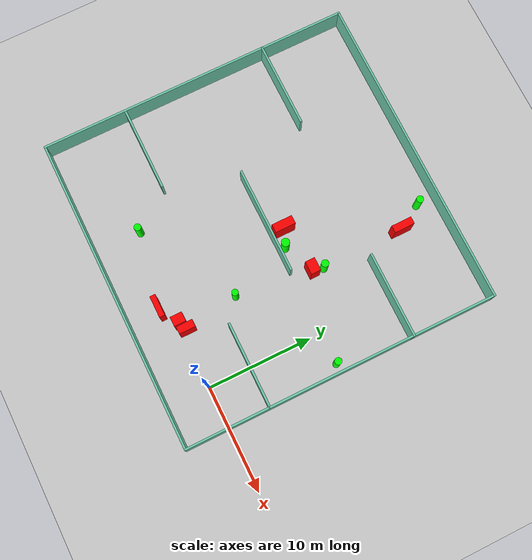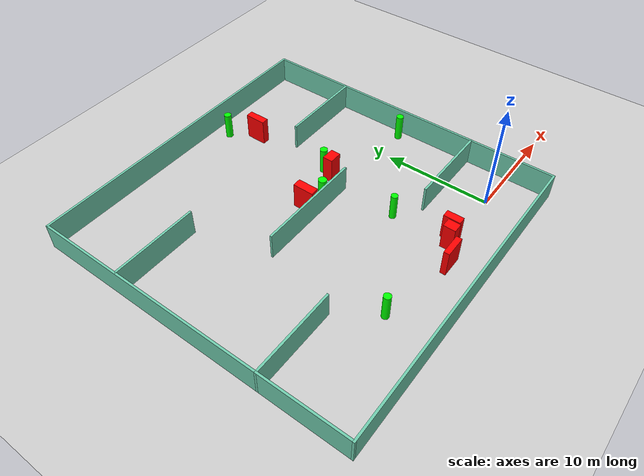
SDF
<sdf version="1.7">
 <world name="default">
  <light name="sun" type="directional">
   <pose>0 0 10 0 -0 0</pose>
   <diffuse>0.8 0.8 0.8 1</diffuse>
   <specular>0.2 0.2 0.2 1</specular>
   <attenuation>
    <range>1000</range>
    <constant>0.9</constant>
    <linear>0.01</linear>
    <quadratic>0.001</quadratic>
   </attenuation>
   <direction>-0.5 0.1 -0.9</direction>
   <spot><inner_angle>0</inner_angle><outer_angle>0</outer_angle><falloff>0</falloff></spot>
  </light>
  <model name="ground_plane">
   <static>1</static>
   <link name="link">
    <collision name="collision">
     <geometry><plane><normal>0 0 1</normal><size>100 100</size></plane></geometry>
     <surface>
      <contact><collide_bitmask>65535</collide_bitmask></contact>
      <friction><ode><mu>100</mu><mu2>50</mu2></ode></friction>
     </surface>
    </collision>
    <visual name="visual">
     <cast_shadows>0</cast_shadows>
     <geometry><plane><normal>0 0 1</normal><size>100 100</size></plane></geometry>
     <material>
      <script><uri>file://media/materials/scripts/gazebo.material</uri><name>Gazebo/Grey</name></script>
     </material>
    </visual>
   </link>
  </model>
  <gravity>0 0 -9.8</gravity>
  <magnetic_field>6e-06 2.3e-05 -4.2e-05</magnetic_field>
  <atmosphere type="adiabatic"/>
  <physics type="ode">
   <max_step_size>0.001</max_step_size>
   <real_time_factor>1</real_time_factor>
   <real_time_update_rate>1000</real_time_update_rate>
  </physics>
  <scene><ambient>0.4 0.4 0.4 1</ambient><background>0.7 0.7 0.7 1</background><shadows>1</shadows></scene>
  <spherical_coordinates>
   <surface_model>EARTH_WGS84</surface_model>
   <latitude_deg>0</latitude_deg>
   <longitude_deg>0</longitude_deg>
   <elevation>0</elevation>
   <heading_deg>0</heading_deg>
  </spherical_coordinates>
  <model name="my_base_walls">
   <link name="Wall_10">
    <collision name="Wall_10_Collision">
     <geometry><box><size>8.2 0.2 2.5</size></box></geometry>
     <pose>0 0 1.25 0 -0 0</pose>
    </collision>
    <visual name="Wall_10_Visual">
     <pose>0 0 1.25 0 -0 0</pose>
     <geometry><box><size>8.2 0.2 2.5</size></box></geometry>
     <material>
      <script><uri>file://media/materials/scripts/gazebo.material</uri><name>Gazebo/Grey</name></script>
      <ambient>0.435294 0.796078 0.67451 1</ambient>
     </material>
     <meta><layer>0</layer></meta>
    </visual>
    <pose>-11 -7 0 0 -0 0</pose>
   </link>
   <link name="Wall_12">
    <collision name="Wall_12_Collision">
     <geometry><box><size>8.2 0.2 2.5</size></box></geometry>
     <pose>0 0 1.25 0 -0 0</pose>
    </collision>
    <visual name="Wall_12_Visual">
     <pose>0 0 1.25 0 -0 0</pose>
     <geometry><box><size>8.2 0.2 2.5</size></box></geometry>
     <material>
      <script><uri>file://media/materials/scripts/gazebo.material</uri><name>Gazebo/Grey</name></script>
      <ambient>0.435294 0.796078 0.67451 1</ambient>
     </material>
     <meta><layer>0</layer></meta>
    </visual>
    <pose>-11 7 0 0 -0 0</pose>
   </link>
   <link name="Wall_14">
    <collision name="Wall_14_Collision">
     <geometry><box><size>8.2 0.2 2.5</size></box></geometry>
     <pose>0 0 1.25 0 -0 0</pose>
    </collision>
    <visual name="Wall_14_Visual">
     <pose>0 0 1.25 0 -0 0</pose>
     <geometry><box><size>8.2 0.2 2.5</size></box></geometry>
     <material>
      <script><uri>file://media/materials/scripts/gazebo.material</uri><name>Gazebo/Grey</name></script>
      <ambient>0.435294 0.796078 0.67451 1</ambient>
     </material>
     <meta><layer>0</layer></meta>
    </visual>
    <pose>11 7 0 0 -0 3.14159</pose>
   </link>
   <link name="Wall_16">
    <collision name="Wall_16_Collision">
     <geometry><box><size>10.2 0.2 2.5</size></box></geometry>
     <pose>0 0 1.25 0 -0 0</pose>
    </collision>
    <visual name="Wall_16_Visual">
     <pose>0 0 1.25 0 -0 0</pose>
     <geometry><box><size>10.2 0.2 2.5</size></box></geometry>
     <material>
      <script><uri>file://media/materials/scripts/gazebo.material</uri><name>Gazebo/Grey</name></script>
      <ambient>0.435294 0.796078 0.67451 1</ambient>
     </material>
     <meta><layer>0</layer></meta>
    </visual>
    <pose>0 0 0 0 -0 3.14159</pose>
   </link>
   <link name="Wall_2">
    <collision name="Wall_2_Collision">
     <geometry><box><size>30.2 0.2 2.5</size></box></geometry>
     <pose>0 0 1.25 0 -0 0</pose>
    </collision>
    <visual name="Wall_2_Visual">
     <pose>0 0 1.25 0 -0 0</pose>
     <geometry><box><size>30.2 0.2 2.5</size></box></geometry>
     <material>
      <script><uri>file://media/materials/scripts/gazebo.material</uri><name>Gazebo/Grey</name></script>
      <ambient>0.435294 0.796078 0.67451 1</ambient>
     </material>
     <meta><layer>0</layer></meta>
    </visual>
    <pose>0 -15 0 0 -0 3.14159</pose>
   </link>
   <link name="Wall_3">
    <collision name="Wall_3_Collision">
     <geometry><box><size>30.2 0.2 2.5</size></box></geometry>
     <pose>0 0 1.25 0 -0 0</pose>
    </collision>
    <visual name="Wall_3_Visual">
     <pose>0 0 1.25 0 -0 0</pose>
     <geometry><box><size>30.2 0.2 2.5</size></box></geometry>
     <material>
      <script><uri>file://media/materials/scripts/gazebo.material</uri><name>Gazebo/Grey</name></script>
      <ambient>0.435294 0.796078 0.67451 1</ambient>
     </material>
     <meta><layer>0</layer></meta>
    </visual>
    <pose>-15 0 0 0 -0 1.5708</pose>
   </link>
   <link name="Wall_4">
    <collision name="Wall_4_Collision">
     <geometry><box><size>30.2 0.2 2.5</size></box></geometry>
     <pose>0 0 1.25 0 -0 0</pose>
    </collision>
    <visual name="Wall_4_Visual">
     <pose>0 0 1.25 0 -0 0</pose>
     <geometry><box><size>30.2 0.2 2.5</size></box></geometry>
     <material>
      <script><uri>file://media/materials/scripts/gazebo.material</uri><name>Gazebo/Grey</name></script>
      <ambient>0.435294 0.796078 0.67451 1</ambient>
     </material>
     <meta><layer>0</layer></meta>
    </visual>
    <pose>0 15 0 0 -0 0</pose>
   </link>
   <link name="Wall_6">
    <collision name="Wall_6_Collision">
     <geometry><box><size>30.2 0.2 2.5</size></box></geometry>
     <pose>0 0 1.25 0 -0 0</pose>
    </collision>
    <visual name="Wall_6_Visual">
     <pose>0 0 1.25 0 -0 0</pose>
     <geometry><box><size>30.2 0.2 2.5</size></box></geometry>
     <material>
      <script><uri>file://media/materials/scripts/gazebo.material</uri><name>Gazebo/Grey</name></script>
      <ambient>0.435294 0.796078 0.67451 1</ambient>
     </material>
     <meta><layer>0</layer></meta>
    </visual>
    <pose>15 0 0 0 -0 1.5708</pose>
   </link>
   <link name="Wall_8">
    <collision name="Wall_8_Collision">
     <geometry><box><size>8.2 0.2 2.5</size></box></geometry>
     <pose>0 0 1.25 0 -0 0</pose>
    </collision>
    <visual name="Wall_8_Visual">
     <pose>0 0 1.25 0 -0 0</pose>
     <geometry><box><size>8.2 0.2 2.5</size></box></geometry>
     <material>
      <script><uri>file://media/materials/scripts/gazebo.material</uri><name>Gazebo/Grey</name></script>
      <ambient>0.435294 0.796078 0.67451 1</ambient>
     </material>
     <meta><layer>0</layer></meta>
    </visual>
    <pose>11 -7 0 0 -0 3.14159</pose>
   </link>
   <static>1</static>
   <pose>-11 11 0 0 -0 0</pose>
  </model>
  <model name="cylinder1">
   <static>1</static>
   <link name="link">
    <inertial>
     <mass>1</mass>
     <inertia><ixx>0.5</ixx><ixy>0</ixy><ixz>0</ixz><iyy>0.5</iyy><iyz>0</iyz><izz>1</izz></inertia>
    </inertial>
    <collision name="collision">
     <geometry><cylinder><radius>0.3094931583844594</radius><length>2.5</length></cylinder></geometry>
    </collision>
    <visual name="visual">
     <geometry><cylinder><radius>0.3094931583844594</radius><length>2.5</length></cylinder></geometry>
     <material>
      <ambient>0 1 0 1</ambient>
      <diffuse>0 1 0 1</diffuse>
      <specular>0.1 0.1 0.1 1</specular>
      <emissive>0 0 0 0</emissive>
     </material>
    </visual>
   </link>
   <pose>-6.298912324980453 5.6615709025178464 1.25 0 0 0</pose>
  </model>
  <model name="cylinder2">
   <static>1</static>
   <link name="link">
    <inertial>
     <mass>1</mass>
     <inertia><ixx>0.5</ixx><ixy>0</ixy><ixz>0</ixz><iyy>0.5</iyy><iyz>0</iyz><izz>1</izz></inertia>
    </inertial>
    <collision name="collision">
     <geometry><cylinder><radius>0.33189277209116574</radius><length>2.5</length></cylinder></geometry>
    </collision>
    <visual name="visual">
     <geometry><cylinder><radius>0.33189277209116574</radius><length>2.5</length></cylinder></geometry>
     <material>
      <ambient>0 1 0 1</ambient>
      <diffuse>0 1 0 1</diffuse>
      <specular>0.1 0.1 0.1 1</specular>
      <emissive>0 0 0 0</emissive>
     </material>
    </visual>
   </link>
   <pose>3.078261769338827 11.044386112416138 1.25 0 0 0</pose>
  </model>
  <model name="cylinder3">
   <static>1</static>
   <link name="link">
    <inertial>
     <mass>1</mass>
     <inertia><ixx>0.5</ixx><ixy>0</ixy><ixz>0</ixz><iyy>0.5</iyy><iyz>0</iyz><izz>1</izz></inertia>
    </inertial>
    <collision name="collision">
     <geometry><cylinder><radius>0.3288036502722275</radius><length>2.5</length></cylinder></geometry>
    </collision>
    <visual name="visual">
     <geometry><cylinder><radius>0.3288036502722275</radius><length>2.5</length></cylinder></geometry>
     <material>
      <ambient>0 1 0 1</ambient>
      <diffuse>0 1 0 1</diffuse>
      <specular>0.1 0.1 0.1 1</specular>
      <emissive>0 0 0 0</emissive>
     </material>
    </visual>
   </link>
   <pose>-6.595435816578288 24.275517975474465 1.25 0 0 0</pose>
  </model>
  <model name="cylinder4">
   <static>1</static>
   <link name="link">
    <inertial>
     <mass>1</mass>
     <inertia><ixx>0.5</ixx><ixy>0</ixy><ixz>0</ixz><iyy>0.5</iyy><iyz>0</iyz><izz>1</izz></inertia>
    </inertial>
    <collision name="collision">
     <geometry><cylinder><radius>0.3915450111144744</radius><length>2.5</length></cylinder></geometry>
    </collision>
    <visual name="visual">
     <geometry><cylinder><radius>0.3915450111144744</radius><length>2.5</length></cylinder></geometry>
     <material>
      <ambient>0 1 0 1</ambient>
      <diffuse>0 1 0 1</diffuse>
      <specular>0.1 0.1 0.1 1</specular>
      <emissive>0 0 0 0</emissive>
     </material>
    </visual>
   </link>
   <pose>-8.374084964152498 11.655272574128523 1.25 0 0 0</pose>
  </model>
  <model name="cylinder5">
   <static>1</static>
   <link name="link">
    <inertial>
     <mass>1</mass>
     <inertia><ixx>0.5</ixx><ixy>0</ixy><ixz>0</ixz><iyy>0.5</iyy><iyz>0</iyz><izz>1</izz></inertia>
    </inertial>
    <collision name="collision">
     <geometry><cylinder><radius>0.348219175722089</radius><length>2.5</length></cylinder></geometry>
    </collision>
    <visual name="visual">
     <geometry><cylinder><radius>0.348219175722089</radius><length>2.5</length></cylinder></geometry>
     <material>
      <ambient>0 1 0 1</ambient>
      <diffuse>0 1 0 1</diffuse>
      <specular>0.1 0.1 0.1 1</specular>
      <emissive>0 0 0 0</emissive>
     </material>
    </visual>
   </link>
   <pose>-5.116259713594463 13.953323550101562 1.25 0 0 0</pose>
  </model>
  <model name="cylinder6">
   <static>1</static>
   <link name="link">
    <inertial>
     <mass>1</mass>
     <inertia><ixx>0.5</ixx><ixy>0</ixy><ixz>0</ixz><iyy>0.5</iyy><iyz>0</iyz><izz>1</izz></inertia>
    </inertial>
    <collision name="collision">
     <geometry><cylinder><radius>0.3303845380486193</radius><length>2.5</length></cylinder></geometry>
    </collision>
    <visual name="visual">
     <geometry><cylinder><radius>0.3303845380486193</radius><length>2.5</length></cylinder></geometry>
     <material>
      <ambient>0 1 0 1</ambient>
      <diffuse>0 1 0 1</diffuse>
      <specular>0.1 0.1 0.1 1</specular>
      <emissive>0 0 0 0</emissive>
     </material>
    </visual>
   </link>
   <pose>-15.455695349578676 0.4258755680505488 1.25 0 0 0</pose>
  </model>
  <model name="box1">
   <static>1</static>
   <link name="link">
    <inertial>
     <mass>1</mass>
     <inertia><ixx>0.083</ixx><ixy>0</ixy><ixz>0</ixz><iyy>0.083</iyy><iyz>0</iyz><izz>0.083</izz></inertia>
    </inertial>
    <collision name="collision">
     <geometry><box><size>2.06108289204378 0.5170663283398791 2.5</size></box></geometry>
    </collision>
    <visual name="visual">
     <geometry><box><size>2.06108289204378 0.5170663283398791 2.5</size></box></geometry>
     <material>
      <ambient>1 0 0 1</ambient>
      <diffuse>1 0 0 1</diffuse>
      <specular>0.1 0.1 0.1 1</specular>
      <emissive>0 0 0 0</emissive>
     </material>
    </visual>
    <sensor name="my_contact" type="contact">
     <contact><collision>box_collision</collision><topic>__default_topic__</topic></contact>
    </sensor>
   </link>
   <pose>-8.23721880468879 -0.9686074803636942 1.25 0 0 0</pose>
  </model>
  <model name="box2">
   <static>1</static>
   <link name="link">
    <inertial>
     <mass>1</mass>
     <inertia><ixx>0.083</ixx><ixy>0</ixy><ixz>0</ixz><iyy>0.083</iyy><iyz>0</iyz><izz>0.083</izz></inertia>
    </inertial>
    <collision name="collision">
     <geometry><box><size>1.2540389264715535 0.933868941743596 2.5</size></box></geometry>
    </collision>
    <visual name="visual">
     <geometry><box><size>1.2540389264715535 0.933868941743596 2.5</size></box></geometry>
     <material>
      <ambient>1 0 0 1</ambient>
      <diffuse>1 0 0 1</diffuse>
      <specular>0.1 0.1 0.1 1</specular>
      <emissive>0 0 0 0</emissive>
     </material>
    </visual>
    <sensor name="my_contact" type="contact">
     <contact><collision>box_collision</collision><topic>__default_topic__</topic></contact>
    </sensor>
   </link>
   <pose>-5.391055205908213 12.883380655724292 1.25 0 0 0</pose>
  </model>
  <model name="box3">
   <static>1</static>
   <link name="link">
    <inertial>
     <mass>1</mass>
     <inertia><ixx>0.083</ixx><ixy>0</ixy><ixz>0</ixz><iyy>0.083</iyy><iyz>0</iyz><izz>0.083</izz></inertia>
    </inertial>
    <collision name="collision">
     <geometry><box><size>0.8049658902175706 1.9629937101426616 2.5</size></box></geometry>
    </collision>
    <visual name="visual">
     <geometry><box><size>0.8049658902175706 1.9629937101426616 2.5</size></box></geometry>
     <material>
      <ambient>1 0 0 1</ambient>
      <diffuse>1 0 0 1</diffuse>
      <specular>0.1 0.1 0.1 1</specular>
      <emissive>0 0 0 0</emissive>
     </material>
    </visual>
    <sensor name="my_contact" type="contact">
     <contact><collision>box_collision</collision><topic>__default_topic__</topic></contact>
    </sensor>
   </link>
   <pose>-9.958324003727505 12.263878252179339 1.25 0 0 0</pose>
  </model>
  <model name="box4">
   <static>1</static>
   <link name="link">
    <inertial>
     <mass>1</mass>
     <inertia><ixx>0.083</ixx><ixy>0</ixy><ixz>0</ixz><iyy>0.083</iyy><iyz>0</iyz><izz>0.083</izz></inertia>
    </inertial>
    <collision name="collision">
     <geometry><box><size>0.9167980770847557 1.1207972802080977 2.5</size></box></geometry>
    </collision>
    <visual name="visual">
     <geometry><box><size>0.9167980770847557 1.1207972802080977 2.5</size></box></geometry>
     <material>
      <ambient>1 0 0 1</ambient>
      <diffuse>1 0 0 1</diffuse>
      <specular>0.1 0.1 0.1 1</specular>
      <emissive>0 0 0 0</emissive>
     </material>
    </visual>
    <sensor name="my_contact" type="contact">
     <contact><collision>box_collision</collision><topic>__default_topic__</topic></contact>
    </sensor>
   </link>
   <pose>-6.372639337858967 0.15962916221054435 1.25 0 0 0</pose>
  </model>
  <model name="box5">
   <static>1</static>
   <link name="link">
    <inertial>
     <mass>1</mass>
     <inertia><ixx>0.083</ixx><ixy>0</ixy><ixz>0</ixz><iyy>0.083</iyy><iyz>0</iyz><izz>0.083</izz></inertia>
    </inertial>
    <collision name="collision">
     <geometry><box><size>0.7060915196733422 1.5494114619634938 2.5</size></box></geometry>
    </collision>
    <visual name="visual">
     <geometry><box><size>0.7060915196733422 1.5494114619634938 2.5</size></box></geometry>
     <material>
      <ambient>1 0 0 1</ambient>
      <diffuse>1 0 0 1</diffuse>
      <specular>0.1 0.1 0.1 1</specular>
      <emissive>0 0 0 0</emissive>
     </material>
    </visual>
    <sensor name="my_contact" type="contact">
     <contact><collision>box_collision</collision><topic>__default_topic__</topic></contact>
    </sensor>
   </link>
   <pose>-5.470232901077216 0.494839566199313 1.25 0 0 0</pose>
  </model>
  <model name="box6">
   <static>1</static>
   <link name="link">
    <inertial>
     <mass>1</mass>
     <inertia><ixx>0.083</ixx><ixy>0</ixy><ixz>0</ixz><iyy>0.083</iyy><iyz>0</iyz><izz>0.083</izz></inertia>
    </inertial>
    <collision name="collision">
     <geometry><box><size>0.6865620424605684 1.949351192534299 2.5</size></box></geometry>
    </collision>
    <visual name="visual">
     <geometry><box><size>0.6865620424605684 1.949351192534299 2.5</size></box></geometry>
     <material>
      <ambient>1 0 0 1</ambient>
      <diffuse>1 0 0 1</diffuse>
      <specular>0.1 0.1 0.1 1</specular>
      <emissive>0 0 0 0</emissive>
     </material>
    </visual>
    <sensor name="my_contact" type="contact">
     <contact><collision>box_collision</collision><topic>__default_topic__</topic></contact>
    </sensor>
   </link>
   <pose>-5.187170434512561 21.78377120300214 1.25 0 0 0</pose>
  </model>
 </world>
</sdf>
